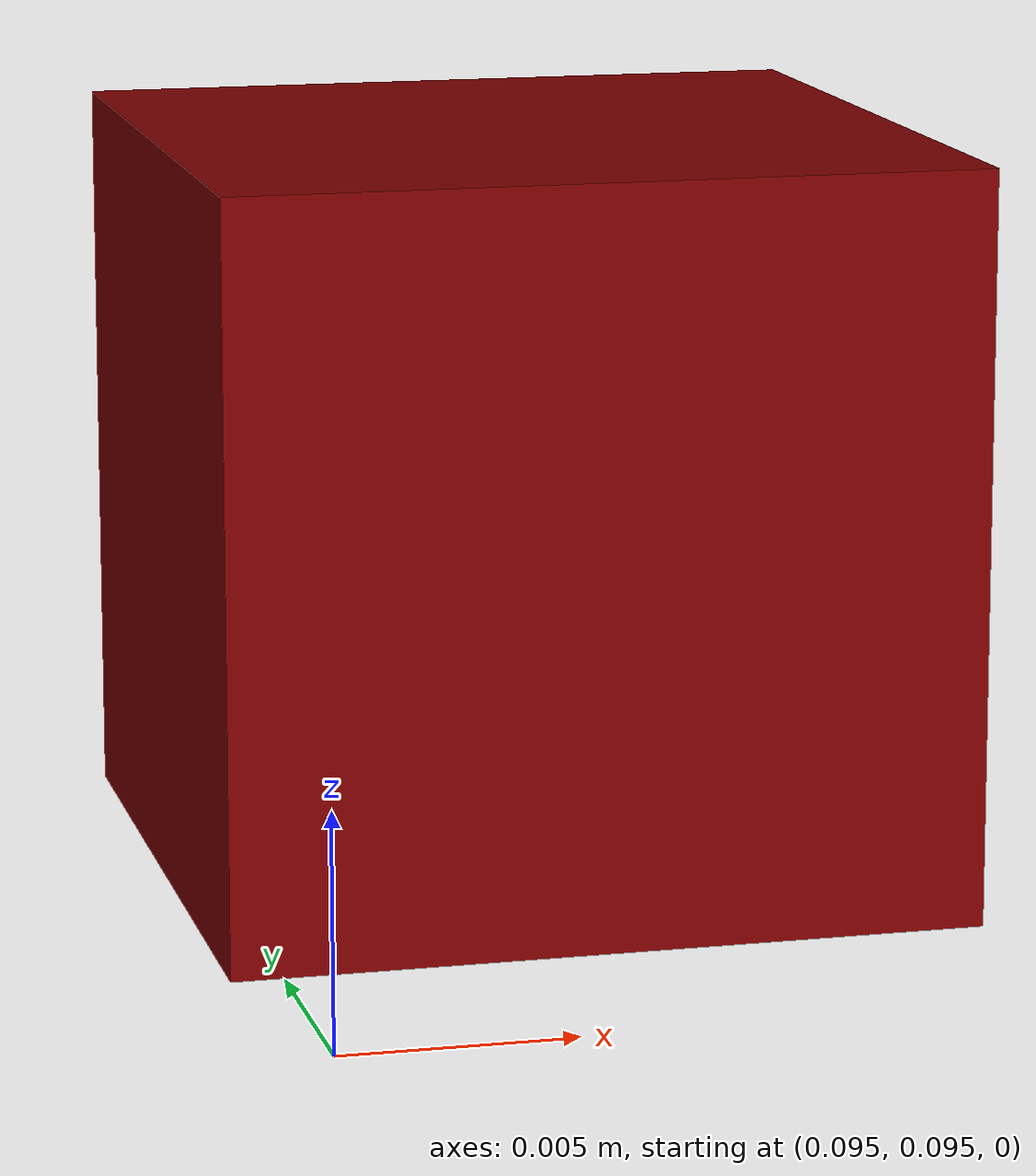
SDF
<?xml version="1.0"?>
<sdf version="1.7">
  <model name="cube">
    <link name="cube">
      <pose>0.1 0.1 0.01 0 0 0</pose>
      <inertial>
        <mass>0.1</mass>
        <inertia>
          <ixx>0.00001125</ixx>
          <ixy>0</ixy>
          <ixz>0</ixz>
          <iyy>0.00001125</iyy>
          <iyz>0</iyz>
          <izz>0.00001125</izz>
        </inertia>
      </inertial>
      <visual name="cube_visual">
        <pose>0 0 0 0 0 0</pose>
        <geometry>
          <box>
            <size>0.015 0.015 0.015</size>
          </box>
        </geometry>
        <material>
          <diffuse>0.5 0 0 1</diffuse>
        </material>
      </visual>
      <collision name="cube_collision">
        <pose>0 0 0 0 0 0</pose>
        <geometry>
          <box>
            <size>0.015 0.015 0.015</size>
          </box>
        </geometry>
        <drake:proximity_properties>
          <drake:compliant_hydroelastic/>
          <drake:hydroelastic_modulus> 1.0e7 </drake:hydroelastic_modulus>
          <drake:mesh_resolution_hint> 0.01 </drake:mesh_resolution_hint>
          <drake:mu_dynamic> 0.5 </drake:mu_dynamic>
          <drake:mu_static> 0.5 </drake:mu_static>
          <drake:hunt_crossley_dissipation> 3.0 </drake:hunt_crossley_dissipation>
        </drake:proximity_properties>
      </collision>
    </link>
  </model>
</sdf>
